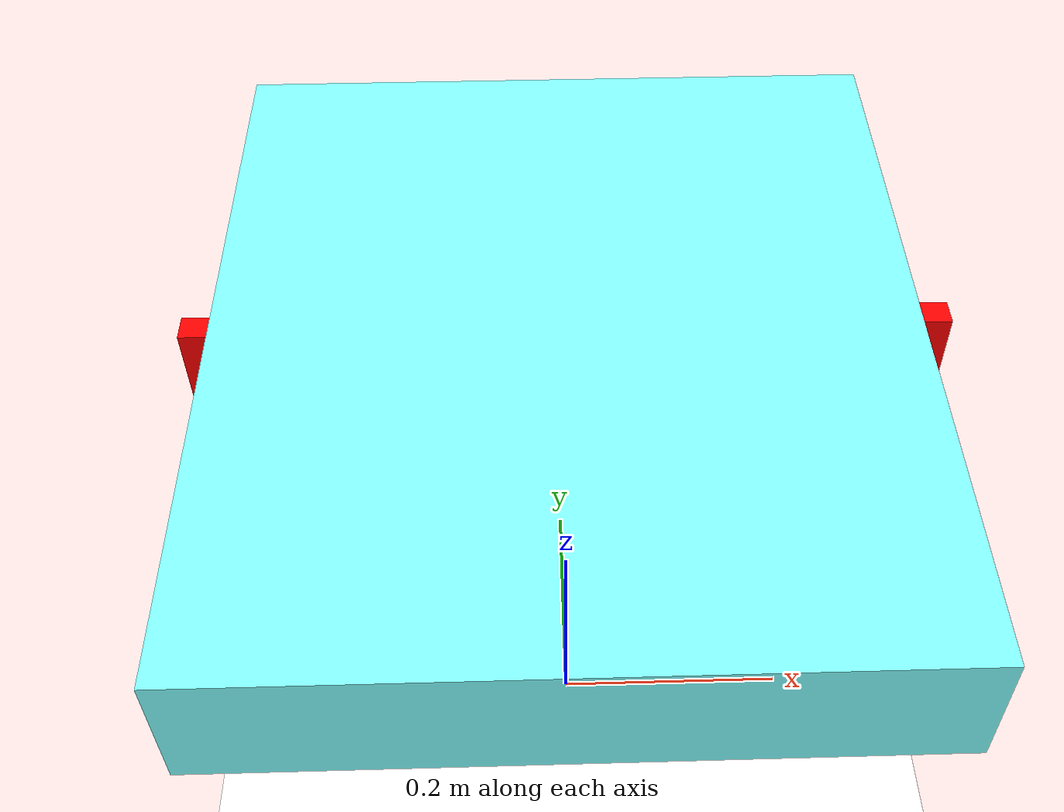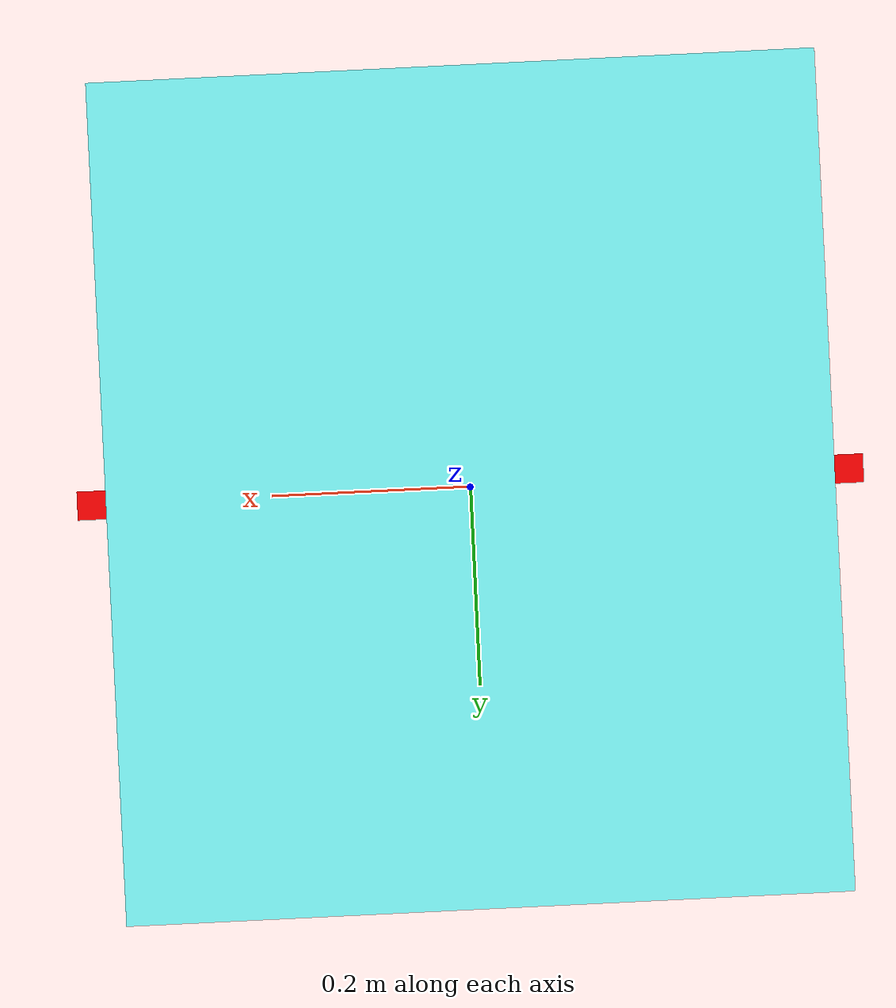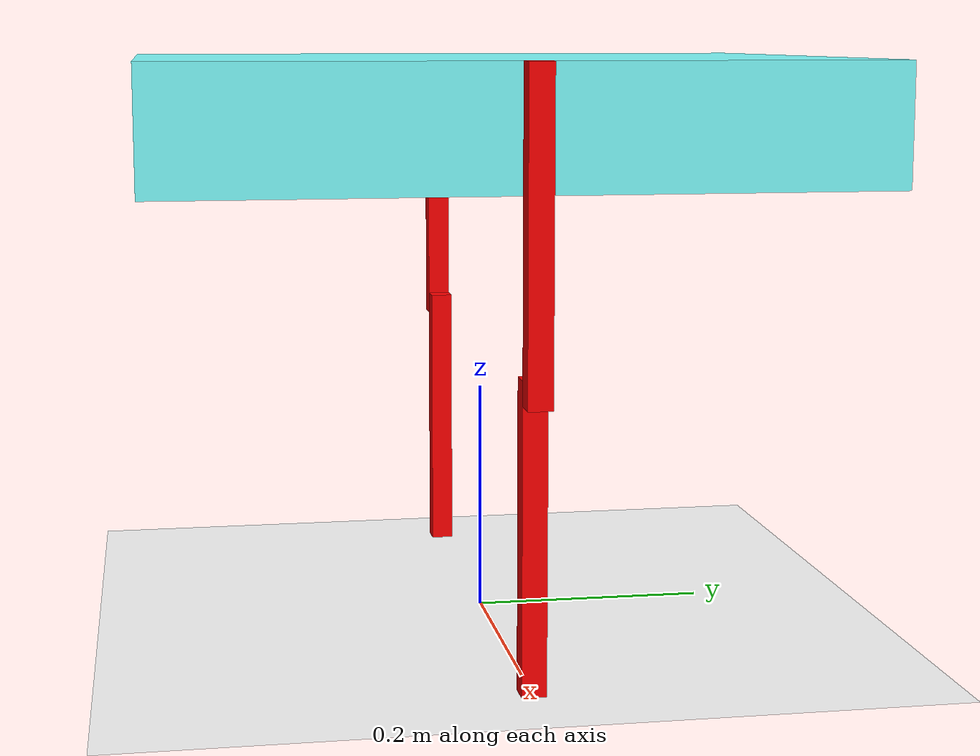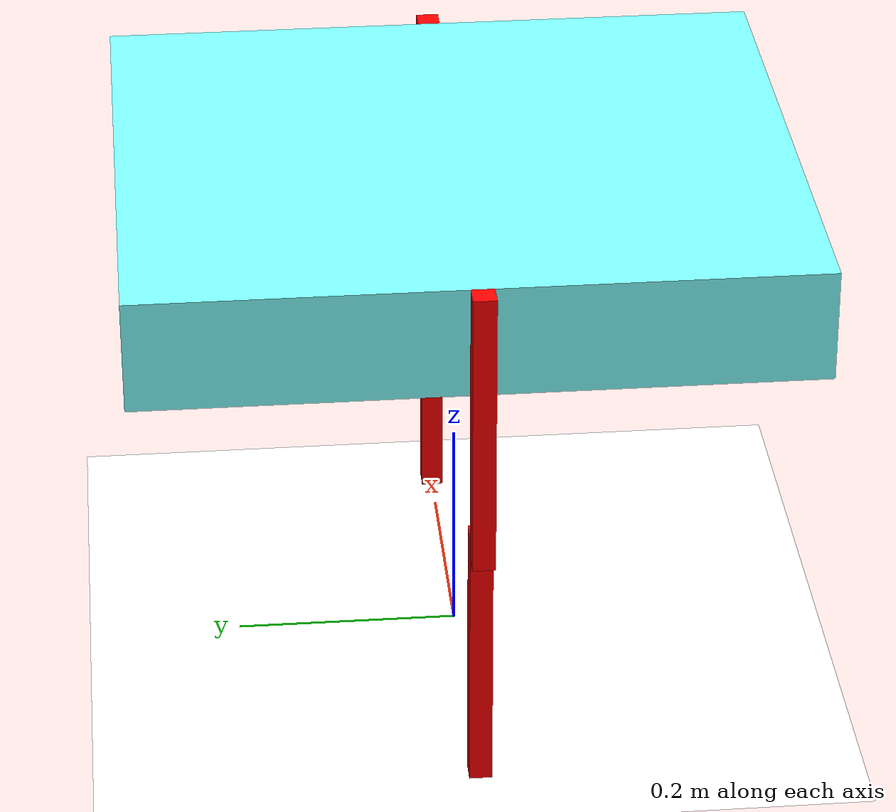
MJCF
<!-- corrected dimensions of TITA and aux wheel -->

<mujoco>
  <option timestep="0.001" />
  <option integrator="RK4" />
  <option gravity="0 0 -9.81" />
  <worldbody>
    <light diffuse=".5 .5 .5" pos="0 0 10" dir="0 0 -1"/>
    <geom type="plane" size="2 2 0.1" rgba="1 1 1 1"/>

    <body pos="0 0 0.49" euler="0 0 180">
        <joint type="free"/>
        <geom type="box" name="body" size="0.255 0.295 0.05" pos="0 0 -0.05" rgba="0.5 1 1 1" mass="20" />
        <body pos="0.265 0 -0.129999">
            <geom type="box" size="0.01 0.01 0.13" rgba="1 0 0 1" mass="1.5" />

            <body pos= "-0.02 0 -0.2349999">
                <geom type="box" size="0.01 0.01 0.125" rgba="1 0 0 1" mass="1.5" />
                <joint name="left_slide" type="slide" axis="0 0 -1" range="-0.2 0" damping="0.1" />
            </body>

        </body>
        <body pos="-0.265 0 -0.129999">
            <geom type="box" size="0.01 0.01 0.13" rgba="1 0 0 1" mass="1.5" />

             <body pos= "0.02 0 -0.2349999">
                <geom type="box" size="0.01 0.01 0.125" rgba="1 0 0 1" mass="1.5" />
                <joint name="right_slide" type="slide" axis="0 0 -1" range="-0.2 0" damping="0.1" />
            </body>

        </body>

    </body>
  </worldbody>

    <actuator>
      <motor joint="left_slide" name="left_joint" gear="1" ctrlrange="0 200" />
      <motor joint="right_slide" name="right_joint" gear="1" ctrlrange="0 200" />
    </actuator>

</mujoco>
